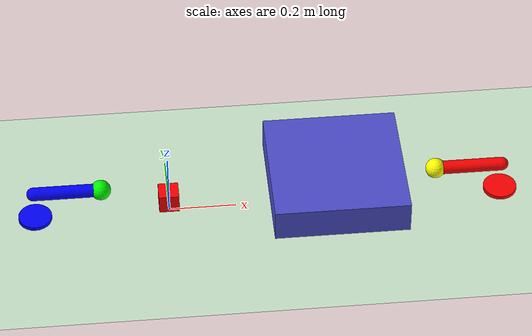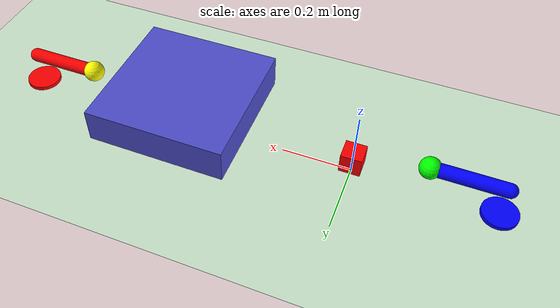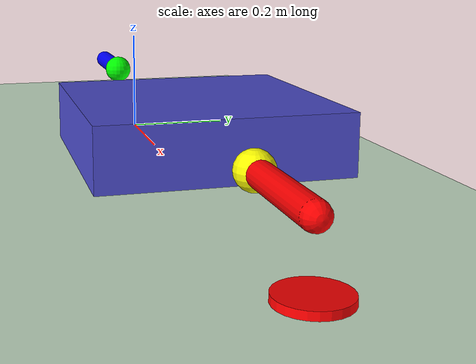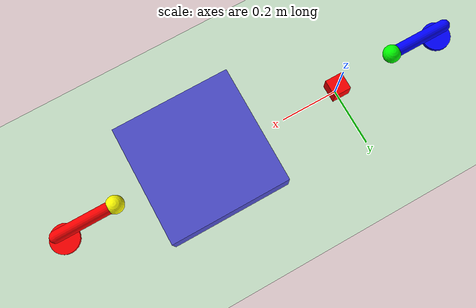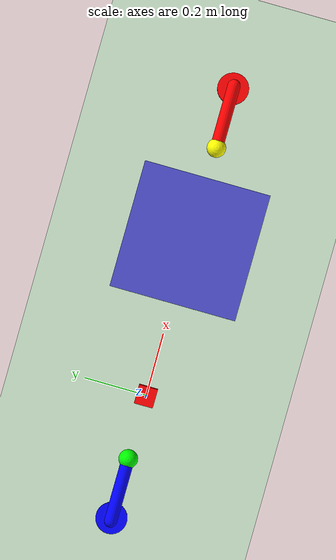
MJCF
<mujoco model="two_robot_scene">
  <compiler angle="radian" coordinate="local"/>
  <option timestep="0.01"/>

  <size njmax="1000" nconmax="200"/>

  <visual>
    <map znear="0.01"/>
  </visual>

  <!-- World body -->
  <worldbody>
    <!-- Ground -->
    <geom name="floor" type="plane" size="5 5 0.1" rgba="0.8 0.9 0.8 1"/>

    <!-- Platform -->
    <body name="platform" pos="0.5 0 0.1">
      <geom type="box" size="0.2 0.2 0.05" rgba="0.3 0.3 0.8 1"/>
    </body>

    <!-- Object -->
    <body name="object" pos="0 0 0.05">
      <joint name="object_free" type="free"/>
      <geom type="box" size="0.03 0.03 0.03" rgba="1 0 0 1"/>
    </body>

    <!-- Robot A -->
    <body name="robotA_base" pos="-0.4 0 0">
      <geom type="cylinder" size="0.05 0.01" rgba="0 0 1 1"/>
      <joint name="robotA_joint1" type="hinge" axis="0 0 1"/>
      <body name="robotA_link1" pos="0 0 0.1">
        <geom type="capsule" fromto="0 0 0 0.2 0 0" size="0.02" rgba="0 0 1 1"/>
        <joint name="robotA_joint2" type="hinge" axis="0 1 0"/>
        <body name="robotA_gripper" pos="0.2 0 0">
          <geom type="sphere" size="0.03" rgba="0 1 0 1"/>
        </body>
      </body>
    </body>

    <!-- Robot B -->
    <body name="robotB_base" pos="1 0 0">
      <geom type="cylinder" size="0.05 0.01" rgba="1 0 0 1"/>
      <joint name="robotB_joint1" type="hinge" axis="0 0 1"/>
      <body name="robotB_link1" pos="0 0 0.1">
        <geom type="capsule" fromto="0 0 0 -0.2 0 0" size="0.02" rgba="1 0 0 1"/>
        <joint name="robotB_joint2" type="hinge" axis="0 1 0"/>
        <body name="robotB_gripper" pos="-0.2 0 0">
          <geom type="sphere" size="0.03" rgba="1 1 0 1"/>
        </body>
      </body>
    </body>
  </worldbody>

  <actuator>
    <!-- Robot A -->
    <motor joint="robotA_joint1" ctrlrange="-3.14 3.14"/>
    <motor joint="robotA_joint2" ctrlrange="-1.57 1.57"/>

    <!-- Robot B -->
    <motor joint="robotB_joint1" ctrlrange="-3.14 3.14"/>
    <motor joint="robotB_joint2" ctrlrange="-1.57 1.57"/>
  </actuator>
</mujoco>
